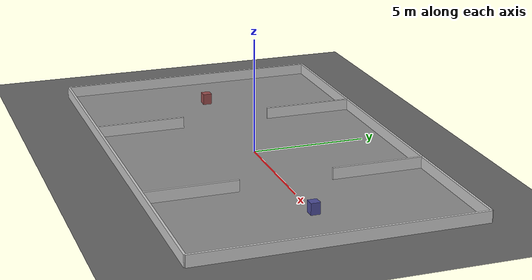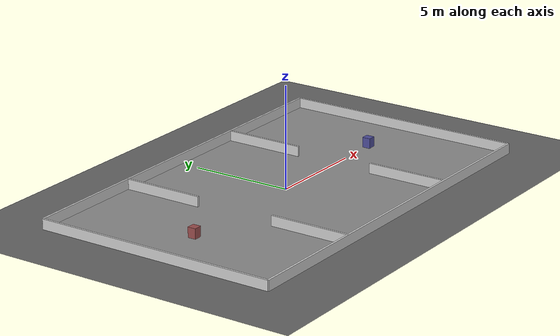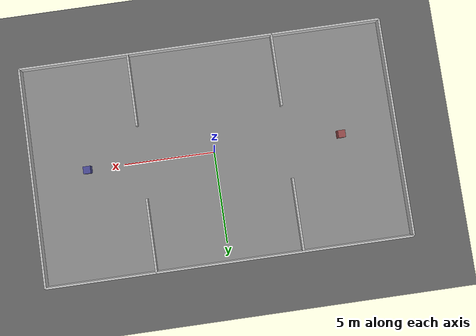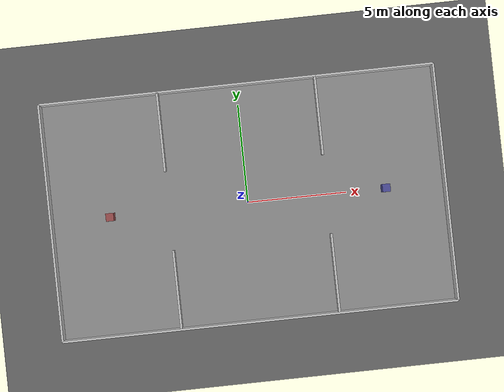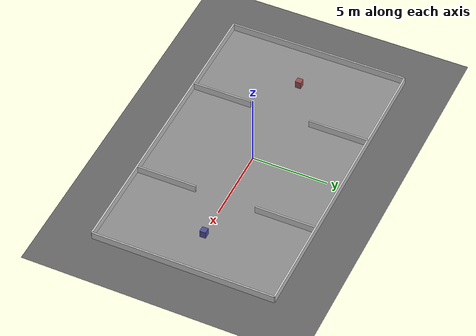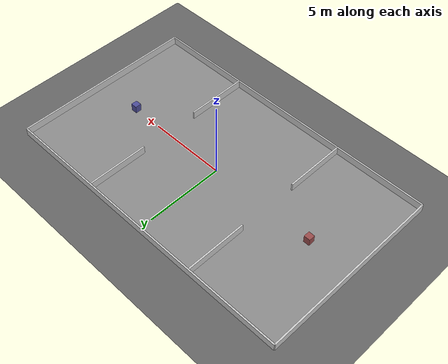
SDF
<?xml version="1.0"?>
<sdf version="1.8">
  <world name="two_rooms">

    <physics name='1ms' type='ignored'>
      <max_step_size>0.001</max_step_size>
      <real_time_factor>1</real_time_factor>
    </physics>

    <plugin
      filename="gz-sim-physics-system"
      name="gz::sim::systems::Physics">
    </plugin>
    <plugin
      filename="gz-sim-user-commands-system"
      name="gz::sim::systems::UserCommands">
    </plugin>
    <plugin
      filename="gz-sim-scene-broadcaster-system"
      name="gz::sim::systems::SceneBroadcaster">
    </plugin>
    <plugin
      filename="gz-sim-sensors-system"
      name="gz::sim::systems::Sensors">
      <render_engine>ogre2</render_engine>
    </plugin>
    <plugin
      filename="gz-sim-imu-system"
      name="gz::sim::systems::Imu">
    </plugin>

     <light name='sun' type='directional'>
      <pose>0 0 10 0 -0 0</pose>
      <cast_shadows>true</cast_shadows>
      <intensity>1</intensity>
      <direction>-0.5 0.1 -0.9</direction>
      <diffuse>0.8 0.8 0.8 1</diffuse>
      <specular>0.2 0.2 0.2 1</specular>
      <attenuation>
        <range>1000</range>
        <linear>0.01</linear>
        <constant>0.90000000000000002</constant>
        <quadratic>0.001</quadratic>
      </attenuation>
      <spot>
        <inner_angle>0</inner_angle>
        <outer_angle>0</outer_angle>
        <falloff>0</falloff>
      </spot>
    </light>

    <model name="ground">
      <static>true</static>
      <link name="ground_link">
        <pose>0 0 0 0 0 0</pose>
        <collision name="g_c">
          <geometry><plane><size>25 25</size></plane></geometry>
          <surface><friction><ode><mu>100</mu><mu2>100</mu2></ode></friction></surface>
        </collision>
        <visual name="g_v">
          <geometry><plane><size>25 25</size></plane></geometry>
          <material><ambient>0.3 0.3 0.3 1</ambient><diffuse>0.4 0.4 0.4 1</diffuse><specular>0 0 0 1</specular></material>
        </visual>
      </link>
    </model>

    <model name="floor">
      <static>true</static>
      <link name="floor_link">
        <pose>0 0 0.001 0 0 0</pose>
        <collision name="f_c"><geometry><box><size>20 12 0.001</size></box></geometry></collision>
        <visual name="f_v"><geometry><box><size>20 12 0.001</size></box></geometry>
          <material><ambient>0.55 0.55 0.55 1</ambient><diffuse>0.55 0.55 0.55 1</diffuse><specular>0 0 0 1</specular></material>
        </visual>
      </link>
    </model>

    <!-- NORTH outer wall -->
    <model name="wall_north">
      <static>true</static>
      <link name="l">
        <pose>0 6 0.25 0 0 0</pose>
        <collision name="c"><geometry><box><size>20 0.1 0.5</size></box></geometry></collision>
        <visual name="v"><geometry><box><size>20 0.1 0.5</size></box></geometry>
          <material><ambient>0.8 0.8 0.8 1</ambient><diffuse>0.8 0.8 0.8 1</diffuse></material>
        </visual>
      </link>
    </model>

    <!-- SOUTH outer wall -->
    <model name="wall_south">
      <static>true</static>
      <link name="l">
        <pose>0 -6 0.25 0 0 0</pose>
        <collision name="c"><geometry><box><size>20 0.1 0.5</size></box></geometry></collision>
        <visual name="v"><geometry><box><size>20 0.1 0.5</size></box></geometry>
          <material><ambient>0.8 0.8 0.8 1</ambient><diffuse>0.8 0.8 0.8 1</diffuse></material>
        </visual>
      </link>
    </model>

    <!-- WEST outer wall -->
    <model name="wall_west">
      <static>true</static>
      <link name="l">
        <pose>-10 0 0.25 0 0 0</pose>
        <collision name="c"><geometry><box><size>0.1 12 0.5</size></box></geometry></collision>
        <visual name="v"><geometry><box><size>0.1 12 0.5</size></box></geometry>
          <material><ambient>0.8 0.8 0.8 1</ambient><diffuse>0.8 0.8 0.8 1</diffuse></material>
        </visual>
      </link>
    </model>

    <!-- EAST outer wall -->
    <model name="wall_east">
      <static>true</static>
      <link name="l">
        <pose>10 0 0.25 0 0 0</pose>
        <collision name="c"><geometry><box><size>0.1 12 0.5</size></box></geometry></collision>
        <visual name="v"><geometry><box><size>0.1 12 0.5</size></box></geometry>
          <material><ambient>0.8 0.8 0.8 1</ambient><diffuse>0.8 0.8 0.8 1</diffuse></material>
        </visual>
      </link>
    </model>

    <!-- Room 1 east wall (x=-4): corridor opening y=-2..2 -->
    <!-- Segment y=-6 to y=-2 (4m) -->
    <model name="wall_r1e_s">
      <static>true</static>
      <link name="l">
        <pose>-4 -4 0.25 0 0 0</pose>
        <collision name="c"><geometry><box><size>0.1 4 0.5</size></box></geometry></collision>
        <visual name="v"><geometry><box><size>0.1 4 0.5</size></box></geometry>
          <material><ambient>0.8 0.8 0.8 1</ambient><diffuse>0.8 0.8 0.8 1</diffuse></material>
        </visual>
      </link>
    </model>
    <!-- Segment y=2 to y=6 (4m) -->
    <model name="wall_r1e_n">
      <static>true</static>
      <link name="l">
        <pose>-4 4 0.25 0 0 0</pose>
        <collision name="c"><geometry><box><size>0.1 4 0.5</size></box></geometry></collision>
        <visual name="v"><geometry><box><size>0.1 4 0.5</size></box></geometry>
          <material><ambient>0.8 0.8 0.8 1</ambient><diffuse>0.8 0.8 0.8 1</diffuse></material>
        </visual>
      </link>
    </model>

    <!-- Room 2 west wall (x=4): corridor opening y=-2..2 -->
    <!-- Segment y=-6 to y=-2 (4m) -->
    <model name="wall_r2w_s">
      <static>true</static>
      <link name="l">
        <pose>4 -4 0.25 0 0 0</pose>
        <collision name="c"><geometry><box><size>0.1 4 0.5</size></box></geometry></collision>
        <visual name="v"><geometry><box><size>0.1 4 0.5</size></box></geometry>
          <material><ambient>0.8 0.8 0.8 1</ambient><diffuse>0.8 0.8 0.8 1</diffuse></material>
        </visual>
      </link>
    </model>
    <!-- Segment y=2 to y=6 (4m) -->
    <model name="wall_r2w_n">
      <static>true</static>
      <link name="l">
        <pose>4 4 0.25 0 0 0</pose>
        <collision name="c"><geometry><box><size>0.1 4 0.5</size></box></geometry></collision>
        <visual name="v"><geometry><box><size>0.1 4 0.5</size></box></geometry>
          <material><ambient>0.8 0.8 0.8 1</ambient><diffuse>0.8 0.8 0.8 1</diffuse></material>
        </visual>
      </link>
    </model>

    <!-- Obstacle in Room 1: center (-7,0), clearance >> 1.52m -->
    <model name="obstacle_r1">
      <static>true</static>
      <link name="l">
        <pose>-7 0 0.25 0 0 0</pose>
        <collision name="c"><geometry><box><size>0.4 0.4 0.5</size></box></geometry></collision>
        <visual name="v"><geometry><box><size>0.4 0.4 0.5</size></box></geometry>
          <material><ambient>0.6 0.3 0.3 1</ambient><diffuse>0.6 0.3 0.3 1</diffuse></material>
        </visual>
      </link>
    </model>

    <!-- Obstacle in Room 2: center (7,0), clearance >> 1.52m -->
    <model name="obstacle_r2">
      <static>true</static>
      <link name="l">
        <pose>7 0 0.25 0 0 0</pose>
        <collision name="c"><geometry><box><size>0.4 0.4 0.5</size></box></geometry></collision>
        <visual name="v"><geometry><box><size>0.4 0.4 0.5</size></box></geometry>
          <material><ambient>0.3 0.3 0.6 1</ambient><diffuse>0.3 0.3 0.6 1</diffuse></material>
        </visual>
      </link>
    </model>

  </world>
</sdf>
